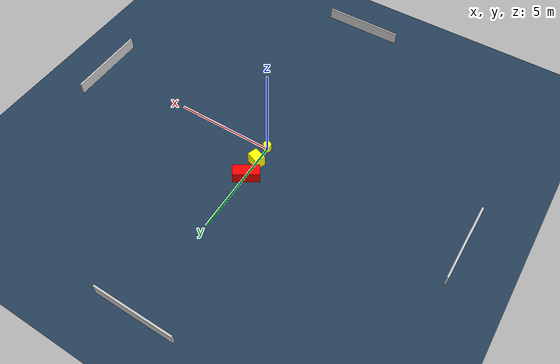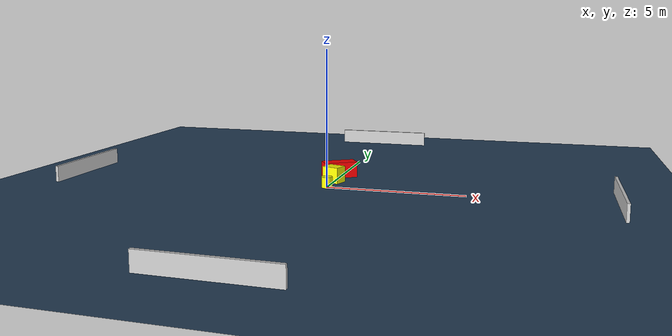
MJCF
<?xml version="1.0" ?>
<mujoco model="generated_environment">
  <option timestep="0.01" integrator="RK4" cone="elliptic"/>
  <default>
    <geom density="1"/>
  </default>
  <asset>
    <texture builtin="gradient" height="3072" name="skybox" rgb1="0.3 0.5 0.7" rgb2="0 0 0" type="skybox" width="512"/>
    <texture builtin="checker" height="300" name="groundplane" rgb1="0.2 0.3 0.4" rgb2="0.1 0.2 0.3" type="2d" width="300"/>
    <material name="groundplane" reflectance="0.2" texrepeat="5 5" texture="groundplane"/>
  </asset>
  <worldbody>
    <light dir="0 0 -1" directional="true" pos="0 0 1.5"/>
    <geom condim="3" friction="0.5 0.005 0.001" material="groundplane" name="floor" pos="0 0 0" size="0 0 0.05" type="plane"/>
    <body name="walls">
      <geom name="wall_1" condim="4" pos="-10.0 0.0 0.3" rgba="0.800000011920929 0.800000011920929 0.800000011920929 1.0" size="0.05 2.0 0.3" type="box"/>
      <geom name="wall_2" condim="4" pos="10.0 0.0 0.3" rgba="0.800000011920929 0.800000011920929 0.800000011920929 1.0" size="0.05 2.0 0.3" type="box"/>
      <geom name="wall_3" condim="4" pos="0.0 -10.0 0.3" rgba="0.800000011920929 0.800000011920929 0.800000011920929 1.0" size="2.0 0.05 0.3" type="box"/>
      <geom name="wall_4" condim="4" pos="0.0 10.0 0.3" rgba="0.800000011920929 0.800000011920929 0.800000011920929 1.0" size="2.0 0.05 0.3" type="box"/>
    </body>
    <body name="robot">
      <joint name="joint_x" type="slide" pos="0 0 0" axis="1 0 0"/>
      <joint name="joint_y" type="slide" pos="0 0 0" axis="0 1 0"/>
      <geom name="robot" type="cylinder" pos="0.0 0.0 0.2" size="0.2 0.2 0.0" mass="5.0" friction="1.0 0.005 0.0001" condim="4" rgba="1.0 1.0 0.0 1.0"/>
    </body>
    <body name="obstacle_1_movable">
      <geom name="obstacle_1_movable" condim="4" pos="-0.0066461597886312935 0.9542110367159521 0.3" euler="0 0 251.11644243252223" friction="0.0 0.005 0.001" rgba="1.0 1.0 0.0 1.0" size="0.260284941233637 0.33123896664574914 0.3" type="box" mass="0.1"/>
      <joint type="free"/>
    </body>
    <body name="obstacle_2_static">
      <geom name="obstacle_2_static" condim="4" pos="-0.05236397411418613 1.9063135726504237 0.3" euler="0 0 212.52890358550545" friction="0.0 0.005 0.001" rgba="1.0 0.0 0.0 1.0" size="0.6406731888513166 0.2807254274122638 0.3" type="box"/>
    </body>
  </worldbody>
  <actuator>
    <motor name="actuator_x" joint="joint_x" gear="1" ctrlrange="-1 1"/>
    <motor name="actuator_y" joint="joint_y" gear="1" ctrlrange="-1 1"/>
  </actuator>
</mujoco>
